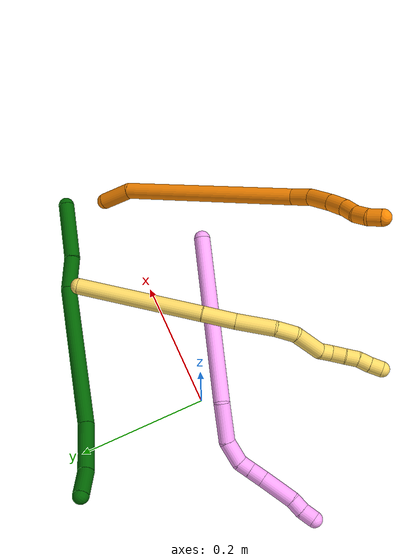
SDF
<sdf version="1.7">
 <world name="default">
  <model name="4">
   <static>0</static>
   <link name="4">
    <collision name="collision-cylinder-e_1_1_4">
     <pose>-0.044014 0.008316 0.122617 -0.067715 -0.3439 0.011764</pose>
     <geometry><cylinder><radius>0.0125</radius><length>0.261084</length></cylinder></geometry>
     <surface>
      <friction><ode><mu>1.16</mu><mu2>1.16</mu2><slip1>0</slip1><slip2>0</slip2></ode></friction>
      <contact><ode><kp>1e+06</kp><kd>1</kd><max_vel>0</max_vel><min_depth>0.001</min_depth></ode></contact>
     </surface>
    </collision>
    <visual name="visual-cylinder-e_1_1_4">
     <pose>-0.044014 0.008316 0.122617 -0.067715 -0.3439 0.011764</pose>
     <geometry><cylinder><radius>0.0125</radius><length>0.261084</length></cylinder></geometry>
     <material><ambient>1 0.65098 0.996078 1</ambient></material>
    </visual>
    <collision name="collision-cylinder-e_2_4_5">
     <pose>-0.104254 0.009661 0.270346 0.270762 -0.556886 -0.07784</pose>
     <geometry><cylinder><radius>0.0125</radius><length>0.061401</length></cylinder></geometry>
     <surface>
      <friction><ode><mu>1.16</mu><mu2>1.16</mu2><slip1>0</slip1><slip2>0</slip2></ode></friction>
      <contact><ode><kp>1e+06</kp><kd>1</kd><max_vel>0</max_vel><min_depth>0.001</min_depth></ode></contact>
     </surface>
    </collision>
    <visual name="visual-cylinder-e_2_4_5">
     <pose>-0.104254 0.009661 0.270346 0.270762 -0.556886 -0.07784</pose>
     <geometry><cylinder><radius>0.0125</radius><length>0.061401</length></cylinder></geometry>
     <material><ambient>1 0.65098 0.996078 1</ambient></material>
    </visual>
    <collision name="collision-cylinder-e_3_5_6">
     <pose>-0.123862 -0.005245 0.311891 0.449846 -0.183183 -0.042023</pose>
     <geometry><cylinder><radius>0.0125</radius><length>0.037118</length></cylinder></geometry>
     <surface>
      <friction><ode><mu>1.16</mu><mu2>1.16</mu2><slip1>0</slip1><slip2>0</slip2></ode></friction>
      <contact><ode><kp>1e+06</kp><kd>1</kd><max_vel>0</max_vel><min_depth>0.001</min_depth></ode></contact>
     </surface>
    </collision>
    <visual name="visual-cylinder-e_3_5_6">
     <pose>-0.123862 -0.005245 0.311891 0.449846 -0.183183 -0.042023</pose>
     <geometry><cylinder><radius>0.0125</radius><length>0.037118</length></cylinder></geometry>
     <material><ambient>1 0.65098 0.996078 1</ambient></material>
    </visual>
    <collision name="collision-cylinder-e_4_6_7">
     <pose>-0.124698 -0.018299 0.336538 0.557381 0.257016 0.073916</pose>
     <geometry><cylinder><radius>0.0125</radius><length>0.020015</length></cylinder></geometry>
     <surface>
      <friction><ode><mu>1.16</mu><mu2>1.16</mu2><slip1>0</slip1><slip2>0</slip2></ode></friction>
      <contact><ode><kp>1e+06</kp><kd>1</kd><max_vel>0</max_vel><min_depth>0.001</min_depth></ode></contact>
     </surface>
    </collision>
    <visual name="visual-cylinder-e_4_6_7">
     <pose>-0.124698 -0.018299 0.336538 0.557381 0.257016 0.073916</pose>
     <geometry><cylinder><radius>0.0125</radius><length>0.020015</length></cylinder></geometry>
     <material><ambient>1 0.65098 0.996078 1</ambient></material>
    </visual>
    <collision name="collision-cylinder-e_5_7_8">
     <pose>-0.118719 -0.028825 0.354571 0.503278 0.297415 0.076993</pose>
     <geometry><cylinder><radius>0.0125</radius><length>0.023448</length></cylinder></geometry>
     <surface>
      <friction><ode><mu>1.16</mu><mu2>1.16</mu2><slip1>0</slip1><slip2>0</slip2></ode></friction>
      <contact><ode><kp>1e+06</kp><kd>1</kd><max_vel>0</max_vel><min_depth>0.001</min_depth></ode></contact>
     </surface>
    </collision>
    <visual name="visual-cylinder-e_5_7_8">
     <pose>-0.118719 -0.028825 0.354571 0.503278 0.297415 0.076993</pose>
     <geometry><cylinder><radius>0.0125</radius><length>0.023448</length></cylinder></geometry>
     <material><ambient>1 0.65098 0.996078 1</ambient></material>
    </visual>
    <collision name="collision-cylinder-e_6_8_9">
     <pose>-0.107497 -0.046083 0.387243 0.47843 0.293715 0.072121</pose>
     <geometry><cylinder><radius>0.0125</radius><length>0.053789</length></cylinder></geometry>
     <surface>
      <friction><ode><mu>1.16</mu><mu2>1.16</mu2><slip1>0</slip1><slip2>0</slip2></ode></friction>
      <contact><ode><kp>1e+06</kp><kd>1</kd><max_vel>0</max_vel><min_depth>0.001</min_depth></ode></contact>
     </surface>
    </collision>
    <visual name="visual-cylinder-e_6_8_9">
     <pose>-0.107497 -0.046083 0.387243 0.47843 0.293715 0.072121</pose>
     <geometry><cylinder><radius>0.0125</radius><length>0.053789</length></cylinder></geometry>
     <material><ambient>1 0.65098 0.996078 1</ambient></material>
    </visual>
    <collision name="collision-cylinder-e_7_9_10">
     <pose>-0.09889 -0.062123 0.419871 0.404741 0.077 0.015806</pose>
     <geometry><cylinder><radius>0.0125</radius><length>0.021334</length></cylinder></geometry>
     <surface>
      <friction><ode><mu>1.16</mu><mu2>1.16</mu2><slip1>0</slip1><slip2>0</slip2></ode></friction>
      <contact><ode><kp>1e+06</kp><kd>1</kd><max_vel>0</max_vel><min_depth>0.001</min_depth></ode></contact>
     </surface>
    </collision>
    <visual name="visual-cylinder-e_7_9_10">
     <pose>-0.09889 -0.062123 0.419871 0.404741 0.077 0.015806</pose>
     <geometry><cylinder><radius>0.0125</radius><length>0.021334</length></cylinder></geometry>
     <material><ambient>1 0.65098 0.996078 1</ambient></material>
    </visual>
    <collision name="collision-cylinder-e_8_10_2">
     <pose>-0.094662 -0.070716 0.439023 0.439254 0.31782 0.071519</pose>
     <geometry><cylinder><radius>0.0125</radius><length>0.021811</length></cylinder></geometry>
     <surface>
      <friction><ode><mu>1.16</mu><mu2>1.16</mu2><slip1>0</slip1><slip2>0</slip2></ode></friction>
      <contact><ode><kp>1e+06</kp><kd>1</kd><max_vel>0</max_vel><min_depth>0.001</min_depth></ode></contact>
     </surface>
    </collision>
    <visual name="visual-cylinder-e_8_10_2">
     <pose>-0.094662 -0.070716 0.439023 0.439254 0.31782 0.071519</pose>
     <geometry><cylinder><radius>0.0125</radius><length>0.021811</length></cylinder></geometry>
     <material><ambient>1 0.65098 0.996078 1</ambient></material>
    </visual>
    <collision name="collision-sphere-2">
     <pose>-0.091254 -0.075122 0.448399 0 -0 0</pose>
     <geometry><sphere><radius>0.0125</radius></sphere></geometry>
     <surface>
      <friction><ode><mu>1.16</mu><mu2>1.16</mu2><slip1>0</slip1><slip2>0</slip2></ode></friction>
      <contact><ode><kp>1e+06</kp><kd>1</kd><max_vel>0</max_vel><min_depth>0.001</min_depth></ode></contact>
     </surface>
    </collision>
    <visual name="visual-sphere-2">
     <pose>-0.091254 -0.075122 0.448399 0 -0 0</pose>
     <geometry><sphere><radius>0.0125</radius></sphere></geometry>
     <material><ambient>1 0.65098 0.996078 1</ambient></material>
    </visual>
    <collision name="collision-sphere-10">
     <pose>-0.098069 -0.066311 0.429647 0 -0 0</pose>
     <geometry><sphere><radius>0.0125</radius></sphere></geometry>
     <surface>
      <friction><ode><mu>1.16</mu><mu2>1.16</mu2><slip1>0</slip1><slip2>0</slip2></ode></friction>
      <contact><ode><kp>1e+06</kp><kd>1</kd><max_vel>0</max_vel><min_depth>0.001</min_depth></ode></contact>
     </surface>
    </collision>
    <visual name="visual-sphere-10">
     <pose>-0.098069 -0.066311 0.429647 0 -0 0</pose>
     <geometry><sphere><radius>0.0125</radius></sphere></geometry>
     <material><ambient>1 0.65098 0.996078 1</ambient></material>
    </visual>
    <collision name="collision-sphere-9">
     <pose>-0.099711 -0.057935 0.410095 0 -0 0</pose>
     <geometry><sphere><radius>0.0125</radius></sphere></geometry>
     <surface>
      <friction><ode><mu>1.16</mu><mu2>1.16</mu2><slip1>0</slip1><slip2>0</slip2></ode></friction>
      <contact><ode><kp>1e+06</kp><kd>1</kd><max_vel>0</max_vel><min_depth>0.001</min_depth></ode></contact>
     </surface>
    </collision>
    <visual name="visual-sphere-9">
     <pose>-0.099711 -0.057935 0.410095 0 -0 0</pose>
     <geometry><sphere><radius>0.0125</radius></sphere></geometry>
     <material><ambient>1 0.65098 0.996078 1</ambient></material>
    </visual>
    <collision name="collision-sphere-4">
     <pose>-0.088027 0.016631 0.245233 0 -0 0</pose>
     <geometry><sphere><radius>0.0125</radius></sphere></geometry>
     <surface>
      <friction><ode><mu>1.16</mu><mu2>1.16</mu2><slip1>0</slip1><slip2>0</slip2></ode></friction>
      <contact><ode><kp>1e+06</kp><kd>1</kd><max_vel>0</max_vel><min_depth>0.001</min_depth></ode></contact>
     </surface>
    </collision>
    <visual name="visual-sphere-4">
     <pose>-0.088027 0.016631 0.245233 0 -0 0</pose>
     <geometry><sphere><radius>0.0125</radius></sphere></geometry>
     <material><ambient>1 0.65098 0.996078 1</ambient></material>
    </visual>
    <collision name="collision-sphere-1">
     <geometry><sphere><radius>0.0125</radius></sphere></geometry>
     <surface>
      <friction><ode><mu>1.16</mu><mu2>1.16</mu2><slip1>0</slip1><slip2>0</slip2></ode></friction>
      <contact><ode><kp>1e+06</kp><kd>1</kd><max_vel>0</max_vel><min_depth>0.001</min_depth></ode></contact>
     </surface>
    </collision>
    <visual name="visual-sphere-1">
     <geometry><sphere><radius>0.0125</radius></sphere></geometry>
     <material><ambient>1 0.65098 0.996078 1</ambient></material>
    </visual>
    <collision name="collision-sphere-8">
     <pose>-0.115283 -0.034231 0.36439 0 -0 0</pose>
     <geometry><sphere><radius>0.0125</radius></sphere></geometry>
     <surface>
      <friction><ode><mu>1.16</mu><mu2>1.16</mu2><slip1>0</slip1><slip2>0</slip2></ode></friction>
      <contact><ode><kp>1e+06</kp><kd>1</kd><max_vel>0</max_vel><min_depth>0.001</min_depth></ode></contact>
     </surface>
    </collision>
    <visual name="visual-sphere-8">
     <pose>-0.115283 -0.034231 0.36439 0 -0 0</pose>
     <geometry><sphere><radius>0.0125</radius></sphere></geometry>
     <material><ambient>1 0.65098 0.996078 1</ambient></material>
    </visual>
    <collision name="collision-sphere-5">
     <pose>-0.120481 0.00269 0.295458 0 -0 0</pose>
     <geometry><sphere><radius>0.0125</radius></sphere></geometry>
     <surface>
      <friction><ode><mu>1.16</mu><mu2>1.16</mu2><slip1>0</slip1><slip2>0</slip2></ode></friction>
      <contact><ode><kp>1e+06</kp><kd>1</kd><max_vel>0</max_vel><min_depth>0.001</min_depth></ode></contact>
     </surface>
    </collision>
    <visual name="visual-sphere-5">
     <pose>-0.120481 0.00269 0.295458 0 -0 0</pose>
     <geometry><sphere><radius>0.0125</radius></sphere></geometry>
     <material><ambient>1 0.65098 0.996078 1</ambient></material>
    </visual>
    <collision name="collision-sphere-6">
     <pose>-0.127242 -0.01318 0.328324 0 -0 0</pose>
     <geometry><sphere><radius>0.0125</radius></sphere></geometry>
     <surface>
      <friction><ode><mu>1.16</mu><mu2>1.16</mu2><slip1>0</slip1><slip2>0</slip2></ode></friction>
      <contact><ode><kp>1e+06</kp><kd>1</kd><max_vel>0</max_vel><min_depth>0.001</min_depth></ode></contact>
     </surface>
    </collision>
    <visual name="visual-sphere-6">
     <pose>-0.127242 -0.01318 0.328324 0 -0 0</pose>
     <geometry><sphere><radius>0.0125</radius></sphere></geometry>
     <material><ambient>1 0.65098 0.996078 1</ambient></material>
    </visual>
    <collision name="collision-sphere-7">
     <pose>-0.122154 -0.023419 0.344752 0 -0 0</pose>
     <geometry><sphere><radius>0.0125</radius></sphere></geometry>
     <surface>
      <friction><ode><mu>1.16</mu><mu2>1.16</mu2><slip1>0</slip1><slip2>0</slip2></ode></friction>
      <contact><ode><kp>1e+06</kp><kd>1</kd><max_vel>0</max_vel><min_depth>0.001</min_depth></ode></contact>
     </surface>
    </collision>
    <visual name="visual-sphere-7">
     <pose>-0.122154 -0.023419 0.344752 0 -0 0</pose>
     <geometry><sphere><radius>0.0125</radius></sphere></geometry>
     <material><ambient>1 0.65098 0.996078 1</ambient></material>
    </visual>
    <inertial>
     <pose>-0.075452 -0.007638 0.229204 0 -0 0</pose>
     <mass>0.5</mass>
     <inertia>
      <ixx>0.00146</ixx>
      <ixy>0</ixy>
      <ixz>0</ixz>
      <iyy>0.001546</iyy>
      <iyz>0</iyz>
      <izz>0.000467</izz>
     </inertia>
    </inertial>
   </link>
   <pose>0.223924 -0.102805 0.063074 1.37657 -0.723898 -1.45489</pose>
  </model>
  <model name="5">
   <static>0</static>
   <link name="5">
    <collision name="collision-cylinder-e_1_1_4">
     <pose>0.003073 -0.052594 0.083384 0.562724 0.031166 0.009008</pose>
     <geometry><cylinder><radius>0.0125</radius><length>0.197265</length></cylinder></geometry>
     <surface>
      <friction><ode><mu>1.16</mu><mu2>1.16</mu2><slip1>0</slip1><slip2>0</slip2></ode></friction>
      <contact><ode><kp>1e+06</kp><kd>1</kd><max_vel>0</max_vel><min_depth>0.001</min_depth></ode></contact>
     </surface>
    </collision>
    <visual name="visual-cylinder-e_1_1_4">
     <pose>0.003073 -0.052594 0.083384 0.562724 0.031166 0.009008</pose>
     <geometry><cylinder><radius>0.0125</radius><length>0.197265</length></cylinder></geometry>
     <material><ambient>1 0.858824 0.4 1</ambient></material>
    </visual>
    <collision name="collision-cylinder-e_2_4_5">
     <pose>0.005827 -0.121166 0.186929 0.670117 -0.012417 -0.004323</pose>
     <geometry><cylinder><radius>0.0125</radius><length>0.051455</length></cylinder></geometry>
     <surface>
      <friction><ode><mu>1.16</mu><mu2>1.16</mu2><slip1>0</slip1><slip2>0</slip2></ode></friction>
      <contact><ode><kp>1e+06</kp><kd>1</kd><max_vel>0</max_vel><min_depth>0.001</min_depth></ode></contact>
     </surface>
    </collision>
    <visual name="visual-cylinder-e_2_4_5">
     <pose>0.005827 -0.121166 0.186929 0.670117 -0.012417 -0.004323</pose>
     <geometry><cylinder><radius>0.0125</radius><length>0.051455</length></cylinder></geometry>
     <material><ambient>1 0.858824 0.4 1</ambient></material>
    </visual>
    <collision name="collision-cylinder-e_3_5_6">
     <pose>0.006593 -0.156041 0.231084 0.667165 0.035501 0.012303</pose>
     <geometry><cylinder><radius>0.0125</radius><length>0.061121</length></cylinder></geometry>
     <surface>
      <friction><ode><mu>1.16</mu><mu2>1.16</mu2><slip1>0</slip1><slip2>0</slip2></ode></friction>
      <contact><ode><kp>1e+06</kp><kd>1</kd><max_vel>0</max_vel><min_depth>0.001</min_depth></ode></contact>
     </surface>
    </collision>
    <visual name="visual-cylinder-e_3_5_6">
     <pose>0.006593 -0.156041 0.231084 0.667165 0.035501 0.012303</pose>
     <geometry><cylinder><radius>0.0125</radius><length>0.061121</length></cylinder></geometry>
     <material><ambient>1 0.858824 0.4 1</ambient></material>
    </visual>
    <collision name="collision-cylinder-e_4_6_7">
     <pose>0.005364 -0.187428 0.266003 0.852029 -0.13851 -0.062936</pose>
     <geometry><cylinder><radius>0.0125</radius><length>0.033509</length></cylinder></geometry>
     <surface>
      <friction><ode><mu>1.16</mu><mu2>1.16</mu2><slip1>0</slip1><slip2>0</slip2></ode></friction>
      <contact><ode><kp>1e+06</kp><kd>1</kd><max_vel>0</max_vel><min_depth>0.001</min_depth></ode></contact>
     </surface>
    </collision>
    <visual name="visual-cylinder-e_4_6_7">
     <pose>0.005364 -0.187428 0.266003 0.852029 -0.13851 -0.062936</pose>
     <geometry><cylinder><radius>0.0125</radius><length>0.033509</length></cylinder></geometry>
     <material><ambient>1 0.858824 0.4 1</ambient></material>
    </visual>
    <collision name="collision-cylinder-e_5_7_8">
     <pose>-0.009492 -0.22024 0.288055 1.06993 -0.496177 -0.297997</pose>
     <geometry><cylinder><radius>0.0125</radius><length>0.052693</length></cylinder></geometry>
     <surface>
      <friction><ode><mu>1.16</mu><mu2>1.16</mu2><slip1>0</slip1><slip2>0</slip2></ode></friction>
      <contact><ode><kp>1e+06</kp><kd>1</kd><max_vel>0</max_vel><min_depth>0.001</min_depth></ode></contact>
     </surface>
    </collision>
    <visual name="visual-cylinder-e_5_7_8">
     <pose>-0.009492 -0.22024 0.288055 1.06993 -0.496177 -0.297997</pose>
     <geometry><cylinder><radius>0.0125</radius><length>0.052693</length></cylinder></geometry>
     <material><ambient>1 0.858824 0.4 1</ambient></material>
    </visual>
    <collision name="collision-cylinder-e_6_8_9">
     <pose>-0.02328 -0.249475 0.304223 1.05587 -0.121017 -0.070628</pose>
     <geometry><cylinder><radius>0.0125</radius><length>0.020629</length></cylinder></geometry>
     <surface>
      <friction><ode><mu>1.16</mu><mu2>1.16</mu2><slip1>0</slip1><slip2>0</slip2></ode></friction>
      <contact><ode><kp>1e+06</kp><kd>1</kd><max_vel>0</max_vel><min_depth>0.001</min_depth></ode></contact>
     </surface>
    </collision>
    <visual name="visual-cylinder-e_6_8_9">
     <pose>-0.02328 -0.249475 0.304223 1.05587 -0.121017 -0.070628</pose>
     <geometry><cylinder><radius>0.0125</radius><length>0.020629</length></cylinder></geometry>
     <material><ambient>1 0.858824 0.4 1</ambient></material>
    </visual>
    <collision name="collision-cylinder-e_7_9_10">
     <pose>-0.024342 -0.264714 0.318715 0.590138 0.016073 0.004885</pose>
     <geometry><cylinder><radius>0.0125</radius><length>0.022748</length></cylinder></geometry>
     <surface>
      <friction><ode><mu>1.16</mu><mu2>1.16</mu2><slip1>0</slip1><slip2>0</slip2></ode></friction>
      <contact><ode><kp>1e+06</kp><kd>1</kd><max_vel>0</max_vel><min_depth>0.001</min_depth></ode></contact>
     </surface>
    </collision>
    <visual name="visual-cylinder-e_7_9_10">
     <pose>-0.024342 -0.264714 0.318715 0.590138 0.016073 0.004885</pose>
     <geometry><cylinder><radius>0.0125</radius><length>0.022748</length></cylinder></geometry>
     <material><ambient>1 0.858824 0.4 1</ambient></material>
    </visual>
    <collision name="collision-cylinder-e_8_10_11">
     <pose>-0.024336 -0.277813 0.335769 0.727332 -0.017383 -0.006616</pose>
     <geometry><cylinder><radius>0.0125</radius><length>0.020367</length></cylinder></geometry>
     <surface>
      <friction><ode><mu>1.16</mu><mu2>1.16</mu2><slip1>0</slip1><slip2>0</slip2></ode></friction>
      <contact><ode><kp>1e+06</kp><kd>1</kd><max_vel>0</max_vel><min_depth>0.001</min_depth></ode></contact>
     </surface>
    </collision>
    <visual name="visual-cylinder-e_8_10_11">
     <pose>-0.024336 -0.277813 0.335769 0.727332 -0.017383 -0.006616</pose>
     <geometry><cylinder><radius>0.0125</radius><length>0.020367</length></cylinder></geometry>
     <material><ambient>1 0.858824 0.4 1</ambient></material>
    </visual>
    <collision name="collision-cylinder-e_9_11_12">
     <pose>-0.026926 -0.290438 0.351139 0.646127 -0.243159 -0.081766</pose>
     <geometry><cylinder><radius>0.0125</radius><length>0.02004</length></cylinder></geometry>
     <surface>
      <friction><ode><mu>1.16</mu><mu2>1.16</mu2><slip1>0</slip1><slip2>0</slip2></ode></friction>
      <contact><ode><kp>1e+06</kp><kd>1</kd><max_vel>0</max_vel><min_depth>0.001</min_depth></ode></contact>
     </surface>
    </collision>
    <visual name="visual-cylinder-e_9_11_12">
     <pose>-0.026926 -0.290438 0.351139 0.646127 -0.243159 -0.081766</pose>
     <geometry><cylinder><radius>0.0125</radius><length>0.02004</length></cylinder></geometry>
     <material><ambient>1 0.858824 0.4 1</ambient></material>
    </visual>
    <collision name="collision-cylinder-e_10_12_2">
     <pose>-0.030618 -0.301965 0.367147 0.602623 -0.127274 -0.039602</pose>
     <geometry><cylinder><radius>0.0125</radius><length>0.020173</length></cylinder></geometry>
     <surface>
      <friction><ode><mu>1.16</mu><mu2>1.16</mu2><slip1>0</slip1><slip2>0</slip2></ode></friction>
      <contact><ode><kp>1e+06</kp><kd>1</kd><max_vel>0</max_vel><min_depth>0.001</min_depth></ode></contact>
     </surface>
    </collision>
    <visual name="visual-cylinder-e_10_12_2">
     <pose>-0.030618 -0.301965 0.367147 0.602623 -0.127274 -0.039602</pose>
     <geometry><cylinder><radius>0.0125</radius><length>0.020173</length></cylinder></geometry>
     <material><ambient>1 0.858824 0.4 1</ambient></material>
    </visual>
    <collision name="collision-sphere-2">
     <pose>-0.031899 -0.307635 0.375389 0 -0 0</pose>
     <geometry><sphere><radius>0.0125</radius></sphere></geometry>
     <surface>
      <friction><ode><mu>1.16</mu><mu2>1.16</mu2><slip1>0</slip1><slip2>0</slip2></ode></friction>
      <contact><ode><kp>1e+06</kp><kd>1</kd><max_vel>0</max_vel><min_depth>0.001</min_depth></ode></contact>
     </surface>
    </collision>
    <visual name="visual-sphere-2">
     <pose>-0.031899 -0.307635 0.375389 0 -0 0</pose>
     <geometry><sphere><radius>0.0125</radius></sphere></geometry>
     <material><ambient>1 0.858824 0.4 1</ambient></material>
    </visual>
    <collision name="collision-sphere-12">
     <pose>-0.029338 -0.296294 0.358904 0 -0 0</pose>
     <geometry><sphere><radius>0.0125</radius></sphere></geometry>
     <surface>
      <friction><ode><mu>1.16</mu><mu2>1.16</mu2><slip1>0</slip1><slip2>0</slip2></ode></friction>
      <contact><ode><kp>1e+06</kp><kd>1</kd><max_vel>0</max_vel><min_depth>0.001</min_depth></ode></contact>
     </surface>
    </collision>
    <visual name="visual-sphere-12">
     <pose>-0.029338 -0.296294 0.358904 0 -0 0</pose>
     <geometry><sphere><radius>0.0125</radius></sphere></geometry>
     <material><ambient>1 0.858824 0.4 1</ambient></material>
    </visual>
    <collision name="collision-sphere-11">
     <pose>-0.024513 -0.284583 0.343374 0 -0 0</pose>
     <geometry><sphere><radius>0.0125</radius></sphere></geometry>
     <surface>
      <friction><ode><mu>1.16</mu><mu2>1.16</mu2><slip1>0</slip1><slip2>0</slip2></ode></friction>
      <contact><ode><kp>1e+06</kp><kd>1</kd><max_vel>0</max_vel><min_depth>0.001</min_depth></ode></contact>
     </surface>
    </collision>
    <visual name="visual-sphere-11">
     <pose>-0.024513 -0.284583 0.343374 0 -0 0</pose>
     <geometry><sphere><radius>0.0125</radius></sphere></geometry>
     <material><ambient>1 0.858824 0.4 1</ambient></material>
    </visual>
    <collision name="collision-sphere-10">
     <pose>-0.024159 -0.271043 0.328164 0 -0 0</pose>
     <geometry><sphere><radius>0.0125</radius></sphere></geometry>
     <surface>
      <friction><ode><mu>1.16</mu><mu2>1.16</mu2><slip1>0</slip1><slip2>0</slip2></ode></friction>
      <contact><ode><kp>1e+06</kp><kd>1</kd><max_vel>0</max_vel><min_depth>0.001</min_depth></ode></contact>
     </surface>
    </collision>
    <visual name="visual-sphere-10">
     <pose>-0.024159 -0.271043 0.328164 0 -0 0</pose>
     <geometry><sphere><radius>0.0125</radius></sphere></geometry>
     <material><ambient>1 0.858824 0.4 1</ambient></material>
    </visual>
    <collision name="collision-sphere-9">
     <pose>-0.024525 -0.258386 0.309266 0 -0 0</pose>
     <geometry><sphere><radius>0.0125</radius></sphere></geometry>
     <surface>
      <friction><ode><mu>1.16</mu><mu2>1.16</mu2><slip1>0</slip1><slip2>0</slip2></ode></friction>
      <contact><ode><kp>1e+06</kp><kd>1</kd><max_vel>0</max_vel><min_depth>0.001</min_depth></ode></contact>
     </surface>
    </collision>
    <visual name="visual-sphere-9">
     <pose>-0.024525 -0.258386 0.309266 0 -0 0</pose>
     <geometry><sphere><radius>0.0125</radius></sphere></geometry>
     <material><ambient>1 0.858824 0.4 1</ambient></material>
    </visual>
    <collision name="collision-sphere-4">
     <pose>0.006147 -0.105188 0.166767 0 -0 0</pose>
     <geometry><sphere><radius>0.0125</radius></sphere></geometry>
     <surface>
      <friction><ode><mu>1.16</mu><mu2>1.16</mu2><slip1>0</slip1><slip2>0</slip2></ode></friction>
      <contact><ode><kp>1e+06</kp><kd>1</kd><max_vel>0</max_vel><min_depth>0.001</min_depth></ode></contact>
     </surface>
    </collision>
    <visual name="visual-sphere-4">
     <pose>0.006147 -0.105188 0.166767 0 -0 0</pose>
     <geometry><sphere><radius>0.0125</radius></sphere></geometry>
     <material><ambient>1 0.858824 0.4 1</ambient></material>
    </visual>
    <collision name="collision-sphere-1">
     <geometry><sphere><radius>0.0125</radius></sphere></geometry>
     <surface>
      <friction><ode><mu>1.16</mu><mu2>1.16</mu2><slip1>0</slip1><slip2>0</slip2></ode></friction>
      <contact><ode><kp>1e+06</kp><kd>1</kd><max_vel>0</max_vel><min_depth>0.001</min_depth></ode></contact>
     </surface>
    </collision>
    <visual name="visual-sphere-1">
     <geometry><sphere><radius>0.0125</radius></sphere></geometry>
     <material><ambient>1 0.858824 0.4 1</ambient></material>
    </visual>
    <collision name="collision-sphere-8">
     <pose>-0.022034 -0.240564 0.299181 0 -0 0</pose>
     <geometry><sphere><radius>0.0125</radius></sphere></geometry>
     <surface>
      <friction><ode><mu>1.16</mu><mu2>1.16</mu2><slip1>0</slip1><slip2>0</slip2></ode></friction>
      <contact><ode><kp>1e+06</kp><kd>1</kd><max_vel>0</max_vel><min_depth>0.001</min_depth></ode></contact>
     </surface>
    </collision>
    <visual name="visual-sphere-8">
     <pose>-0.022034 -0.240564 0.299181 0 -0 0</pose>
     <geometry><sphere><radius>0.0125</radius></sphere></geometry>
     <material><ambient>1 0.858824 0.4 1</ambient></material>
    </visual>
    <collision name="collision-sphere-5">
     <pose>0.005508 -0.137143 0.207091 0 -0 0</pose>
     <geometry><sphere><radius>0.0125</radius></sphere></geometry>
     <surface>
      <friction><ode><mu>1.16</mu><mu2>1.16</mu2><slip1>0</slip1><slip2>0</slip2></ode></friction>
      <contact><ode><kp>1e+06</kp><kd>1</kd><max_vel>0</max_vel><min_depth>0.001</min_depth></ode></contact>
     </surface>
    </collision>
    <visual name="visual-sphere-5">
     <pose>0.005508 -0.137143 0.207091 0 -0 0</pose>
     <geometry><sphere><radius>0.0125</radius></sphere></geometry>
     <material><ambient>1 0.858824 0.4 1</ambient></material>
    </visual>
    <collision name="collision-sphere-6">
     <pose>0.007677 -0.174939 0.255077 0 -0 0</pose>
     <geometry><sphere><radius>0.0125</radius></sphere></geometry>
     <surface>
      <friction><ode><mu>1.16</mu><mu2>1.16</mu2><slip1>0</slip1><slip2>0</slip2></ode></friction>
      <contact><ode><kp>1e+06</kp><kd>1</kd><max_vel>0</max_vel><min_depth>0.001</min_depth></ode></contact>
     </surface>
    </collision>
    <visual name="visual-sphere-6">
     <pose>0.007677 -0.174939 0.255077 0 -0 0</pose>
     <geometry><sphere><radius>0.0125</radius></sphere></geometry>
     <material><ambient>1 0.858824 0.4 1</ambient></material>
    </visual>
    <collision name="collision-sphere-7">
     <pose>0.003051 -0.199917 0.27693 0 -0 0</pose>
     <geometry><sphere><radius>0.0125</radius></sphere></geometry>
     <surface>
      <friction><ode><mu>1.16</mu><mu2>1.16</mu2><slip1>0</slip1><slip2>0</slip2></ode></friction>
      <contact><ode><kp>1e+06</kp><kd>1</kd><max_vel>0</max_vel><min_depth>0.001</min_depth></ode></contact>
     </surface>
    </collision>
    <visual name="visual-sphere-7">
     <pose>0.003051 -0.199917 0.27693 0 -0 0</pose>
     <geometry><sphere><radius>0.0125</radius></sphere></geometry>
     <material><ambient>1 0.858824 0.4 1</ambient></material>
    </visual>
    <inertial>
     <pose>-0.003396 -0.145542 0.198182 0 -0 0</pose>
     <mass>0.5</mass>
     <inertia>
      <ixx>0.000705</ixx>
      <ixy>0</ixy>
      <ixz>0</ixz>
      <iyy>0.00057</iyy>
      <iyz>0</iyz>
      <izz>0.000403</izz>
     </inertia>
    </inertial>
   </link>
   <pose>0.229093 0.103865 0.06984 0.951855 -0.631238 -0.664438</pose>
  </model>
  <model name="6">
   <static>0</static>
   <link name="6">
    <collision name="collision-cylinder-e_1_1_4">
     <pose>-0.038116 0.017169 -0.020961 -2.45531 -0.952834 1.9305</pose>
     <geometry><cylinder><radius>0.0125</radius><length>0.09353</length></cylinder></geometry>
     <surface>
      <friction><ode><mu>1.16</mu><mu2>1.16</mu2><slip1>0</slip1><slip2>0</slip2></ode></friction>
      <contact><ode><kp>1e+06</kp><kd>1</kd><max_vel>0</max_vel><min_depth>0.001</min_depth></ode></contact>
     </surface>
    </collision>
    <visual name="visual-cylinder-e_1_1_4">
     <pose>-0.038116 0.017169 -0.020961 -2.45531 -0.952834 1.9305</pose>
     <geometry><cylinder><radius>0.0125</radius><length>0.09353</length></cylinder></geometry>
     <material><ambient>0 0.392157 0.003922 1</ambient></material>
    </visual>
    <collision name="collision-cylinder-e_2_4_5">
     <pose>-0.096791 0.048524 -0.050687 -2.12428 -0.889309 1.41423</pose>
     <geometry><cylinder><radius>0.0125</radius><length>0.052943</length></cylinder></geometry>
     <surface>
      <friction><ode><mu>1.16</mu><mu2>1.16</mu2><slip1>0</slip1><slip2>0</slip2></ode></friction>
      <contact><ode><kp>1e+06</kp><kd>1</kd><max_vel>0</max_vel><min_depth>0.001</min_depth></ode></contact>
     </surface>
    </collision>
    <visual name="visual-cylinder-e_2_4_5">
     <pose>-0.096791 0.048524 -0.050687 -2.12428 -0.889309 1.41423</pose>
     <geometry><cylinder><radius>0.0125</radius><length>0.052943</length></cylinder></geometry>
     <material><ambient>0 0.392157 0.003922 1</ambient></material>
    </visual>
    <collision name="collision-cylinder-e_3_5_6">
     <pose>-0.220471 0.094006 -0.102661 -2.51474 -1.09334 2.16281</pose>
     <geometry><cylinder><radius>0.0125</radius><length>0.23221</length></cylinder></geometry>
     <surface>
      <friction><ode><mu>1.16</mu><mu2>1.16</mu2><slip1>0</slip1><slip2>0</slip2></ode></friction>
      <contact><ode><kp>1e+06</kp><kd>1</kd><max_vel>0</max_vel><min_depth>0.001</min_depth></ode></contact>
     </surface>
    </collision>
    <visual name="visual-cylinder-e_3_5_6">
     <pose>-0.220471 0.094006 -0.102661 -2.51474 -1.09334 2.16281</pose>
     <geometry><cylinder><radius>0.0125</radius><length>0.23221</length></cylinder></geometry>
     <material><ambient>0 0.392157 0.003922 1</ambient></material>
    </visual>
    <collision name="collision-cylinder-e_4_6_7">
     <pose>-0.360352 0.135108 -0.153181 -2.21148 -1.24959 1.92584</pose>
     <geometry><cylinder><radius>0.0125</radius><length>0.077483</length></cylinder></geometry>
     <surface>
      <friction><ode><mu>1.16</mu><mu2>1.16</mu2><slip1>0</slip1><slip2>0</slip2></ode></friction>
      <contact><ode><kp>1e+06</kp><kd>1</kd><max_vel>0</max_vel><min_depth>0.001</min_depth></ode></contact>
     </surface>
    </collision>
    <visual name="visual-cylinder-e_4_6_7">
     <pose>-0.360352 0.135108 -0.153181 -2.21148 -1.24959 1.92584</pose>
     <geometry><cylinder><radius>0.0125</radius><length>0.077483</length></cylinder></geometry>
     <material><ambient>0 0.392157 0.003922 1</ambient></material>
    </visual>
    <collision name="collision-cylinder-e_5_7_2">
     <pose>-0.418476 0.149557 -0.158949 -1.24991 -1.34563 1.04345</pose>
     <geometry><cylinder><radius>0.0125</radius><length>0.043834</length></cylinder></geometry>
     <surface>
      <friction><ode><mu>1.16</mu><mu2>1.16</mu2><slip1>0</slip1><slip2>0</slip2></ode></friction>
      <contact><ode><kp>1e+06</kp><kd>1</kd><max_vel>0</max_vel><min_depth>0.001</min_depth></ode></contact>
     </surface>
    </collision>
    <visual name="visual-cylinder-e_5_7_2">
     <pose>-0.418476 0.149557 -0.158949 -1.24991 -1.34563 1.04345</pose>
     <geometry><cylinder><radius>0.0125</radius><length>0.043834</length></cylinder></geometry>
     <material><ambient>0 0.392157 0.003922 1</ambient></material>
    </visual>
    <collision name="collision-sphere-2">
     <pose>-0.439839 0.154201 -0.157406 0 -0 0</pose>
     <geometry><sphere><radius>0.0125</radius></sphere></geometry>
     <surface>
      <friction><ode><mu>1.16</mu><mu2>1.16</mu2><slip1>0</slip1><slip2>0</slip2></ode></friction>
      <contact><ode><kp>1e+06</kp><kd>1</kd><max_vel>0</max_vel><min_depth>0.001</min_depth></ode></contact>
     </surface>
    </collision>
    <visual name="visual-sphere-2">
     <pose>-0.439839 0.154201 -0.157406 0 -0 0</pose>
     <geometry><sphere><radius>0.0125</radius></sphere></geometry>
     <material><ambient>0 0.392157 0.003922 1</ambient></material>
    </visual>
    <collision name="collision-sphere-7">
     <pose>-0.397112 0.144914 -0.160492 0 -0 0</pose>
     <geometry><sphere><radius>0.0125</radius></sphere></geometry>
     <surface>
      <friction><ode><mu>1.16</mu><mu2>1.16</mu2><slip1>0</slip1><slip2>0</slip2></ode></friction>
      <contact><ode><kp>1e+06</kp><kd>1</kd><max_vel>0</max_vel><min_depth>0.001</min_depth></ode></contact>
     </surface>
    </collision>
    <visual name="visual-sphere-7">
     <pose>-0.397112 0.144914 -0.160492 0 -0 0</pose>
     <geometry><sphere><radius>0.0125</radius></sphere></geometry>
     <material><ambient>0 0.392157 0.003922 1</ambient></material>
    </visual>
    <collision name="collision-sphere-6">
     <pose>-0.323592 0.125303 -0.14587 0 -0 0</pose>
     <geometry><sphere><radius>0.0125</radius></sphere></geometry>
     <surface>
      <friction><ode><mu>1.16</mu><mu2>1.16</mu2><slip1>0</slip1><slip2>0</slip2></ode></friction>
      <contact><ode><kp>1e+06</kp><kd>1</kd><max_vel>0</max_vel><min_depth>0.001</min_depth></ode></contact>
     </surface>
    </collision>
    <visual name="visual-sphere-6">
     <pose>-0.323592 0.125303 -0.14587 0 -0 0</pose>
     <geometry><sphere><radius>0.0125</radius></sphere></geometry>
     <material><ambient>0 0.392157 0.003922 1</ambient></material>
    </visual>
    <collision name="collision-sphere-5">
     <pose>-0.11735 0.06271 -0.059452 0 -0 0</pose>
     <geometry><sphere><radius>0.0125</radius></sphere></geometry>
     <surface>
      <friction><ode><mu>1.16</mu><mu2>1.16</mu2><slip1>0</slip1><slip2>0</slip2></ode></friction>
      <contact><ode><kp>1e+06</kp><kd>1</kd><max_vel>0</max_vel><min_depth>0.001</min_depth></ode></contact>
     </surface>
    </collision>
    <visual name="visual-sphere-5">
     <pose>-0.11735 0.06271 -0.059452 0 -0 0</pose>
     <geometry><sphere><radius>0.0125</radius></sphere></geometry>
     <material><ambient>0 0.392157 0.003922 1</ambient></material>
    </visual>
    <collision name="collision-sphere-1">
     <geometry><sphere><radius>0.0125</radius></sphere></geometry>
     <surface>
      <friction><ode><mu>1.16</mu><mu2>1.16</mu2><slip1>0</slip1><slip2>0</slip2></ode></friction>
      <contact><ode><kp>1e+06</kp><kd>1</kd><max_vel>0</max_vel><min_depth>0.001</min_depth></ode></contact>
     </surface>
    </collision>
    <visual name="visual-sphere-1">
     <geometry><sphere><radius>0.0125</radius></sphere></geometry>
     <material><ambient>0 0.392157 0.003922 1</ambient></material>
    </visual>
    <collision name="collision-sphere-4">
     <pose>-0.076233 0.034338 -0.041921 0 -0 0</pose>
     <geometry><sphere><radius>0.0125</radius></sphere></geometry>
     <surface>
      <friction><ode><mu>1.16</mu><mu2>1.16</mu2><slip1>0</slip1><slip2>0</slip2></ode></friction>
      <contact><ode><kp>1e+06</kp><kd>1</kd><max_vel>0</max_vel><min_depth>0.001</min_depth></ode></contact>
     </surface>
    </collision>
    <visual name="visual-sphere-4">
     <pose>-0.076233 0.034338 -0.041921 0 -0 0</pose>
     <geometry><sphere><radius>0.0125</radius></sphere></geometry>
     <material><ambient>0 0.392157 0.003922 1</ambient></material>
    </visual>
    <inertial>
     <pose>-0.212299 0.086056 -0.094639 0 -0 0</pose>
     <mass>0.5</mass>
     <inertia>
      <ixx>0.000142</ixx>
      <ixy>0</ixy>
      <ixz>0</ixz>
      <iyy>0.001515</iyy>
      <iyz>0</iyz>
      <izz>0.00071</izz>
     </inertia>
    </inertial>
   </link>
   <pose>0.387234 0.068661 0.011499 -0.657883 0.644154 -0.264355</pose>
  </model>
  <model name="19">
   <static>0</static>
   <link name="19">
    <collision name="collision-cylinder-e_1_1_4">
     <pose>-0.013337 -0.007009 0.02122 0.319037 -0.538074 -0.088661</pose>
     <geometry><cylinder><radius>0.0125</radius><length>0.05205</length></cylinder></geometry>
     <surface>
      <friction><ode><mu>1.16</mu><mu2>1.16</mu2><slip1>0</slip1><slip2>0</slip2></ode></friction>
      <contact><ode><kp>1e+06</kp><kd>1</kd><max_vel>0</max_vel><min_depth>0.001</min_depth></ode></contact>
     </surface>
    </collision>
    <visual name="visual-cylinder-e_1_1_4">
     <pose>-0.013337 -0.007009 0.02122 0.319037 -0.538074 -0.088661</pose>
     <geometry><cylinder><radius>0.0125</radius><length>0.05205</length></cylinder></geometry>
     <material><ambient>0.996078 0.537255 0 1</ambient></material>
    </visual>
    <collision name="collision-cylinder-e_2_4_5">
     <pose>-0.133713 -0.020092 0.133335 0.066719 -0.865676 -0.030837</pose>
     <geometry><cylinder><radius>0.0125</radius><length>0.281112</length></cylinder></geometry>
     <surface>
      <friction><ode><mu>1.16</mu><mu2>1.16</mu2><slip1>0</slip1><slip2>0</slip2></ode></friction>
      <contact><ode><kp>1e+06</kp><kd>1</kd><max_vel>0</max_vel><min_depth>0.001</min_depth></ode></contact>
     </surface>
    </collision>
    <visual name="visual-cylinder-e_2_4_5">
     <pose>-0.133713 -0.020092 0.133335 0.066719 -0.865676 -0.030837</pose>
     <geometry><cylinder><radius>0.0125</radius><length>0.281112</length></cylinder></geometry>
     <material><ambient>0.996078 0.537255 0 1</ambient></material>
    </visual>
    <collision name="collision-cylinder-e_3_5_6">
     <pose>-0.250681 -0.025196 0.236085 -0.081599 -0.6956 0.029597</pose>
     <geometry><cylinder><radius>0.0125</radius><length>0.030989</length></cylinder></geometry>
     <surface>
      <friction><ode><mu>1.16</mu><mu2>1.16</mu2><slip1>0</slip1><slip2>0</slip2></ode></friction>
      <contact><ode><kp>1e+06</kp><kd>1</kd><max_vel>0</max_vel><min_depth>0.001</min_depth></ode></contact>
     </surface>
    </collision>
    <visual name="visual-cylinder-e_3_5_6">
     <pose>-0.250681 -0.025196 0.236085 -0.081599 -0.6956 0.029597</pose>
     <geometry><cylinder><radius>0.0125</radius><length>0.030989</length></cylinder></geometry>
     <material><ambient>0.996078 0.537255 0 1</ambient></material>
    </visual>
    <collision name="collision-cylinder-e_4_6_7">
     <pose>-0.271946 -0.017688 0.263007 -0.409462 -0.60414 0.129224</pose>
     <geometry><cylinder><radius>0.0125</radius><length>0.039913</length></cylinder></geometry>
     <surface>
      <friction><ode><mu>1.16</mu><mu2>1.16</mu2><slip1>0</slip1><slip2>0</slip2></ode></friction>
      <contact><ode><kp>1e+06</kp><kd>1</kd><max_vel>0</max_vel><min_depth>0.001</min_depth></ode></contact>
     </surface>
    </collision>
    <visual name="visual-cylinder-e_4_6_7">
     <pose>-0.271946 -0.017688 0.263007 -0.409462 -0.60414 0.129224</pose>
     <geometry><cylinder><radius>0.0125</radius><length>0.039913</length></cylinder></geometry>
     <material><ambient>0.996078 0.537255 0 1</ambient></material>
    </visual>
    <collision name="collision-cylinder-e_5_7_8">
     <pose>-0.291445 -0.005471 0.288574 -0.495715 -0.599702 0.156161</pose>
     <geometry><cylinder><radius>0.0125</radius><length>0.028925</length></cylinder></geometry>
     <surface>
      <friction><ode><mu>1.16</mu><mu2>1.16</mu2><slip1>0</slip1><slip2>0</slip2></ode></friction>
      <contact><ode><kp>1e+06</kp><kd>1</kd><max_vel>0</max_vel><min_depth>0.001</min_depth></ode></contact>
     </surface>
    </collision>
    <visual name="visual-cylinder-e_5_7_8">
     <pose>-0.291445 -0.005471 0.288574 -0.495715 -0.599702 0.156161</pose>
     <geometry><cylinder><radius>0.0125</radius><length>0.028925</length></cylinder></geometry>
     <material><ambient>0.996078 0.537255 0 1</ambient></material>
    </visual>
    <collision name="collision-cylinder-e_6_8_9">
     <pose>-0.30567 0.006691 0.307415 -0.660814 -0.521066 0.182364</pose>
     <geometry><cylinder><radius>0.0125</radius><length>0.024357</length></cylinder></geometry>
     <surface>
      <friction><ode><mu>1.16</mu><mu2>1.16</mu2><slip1>0</slip1><slip2>0</slip2></ode></friction>
      <contact><ode><kp>1e+06</kp><kd>1</kd><max_vel>0</max_vel><min_depth>0.001</min_depth></ode></contact>
     </surface>
    </collision>
    <visual name="visual-cylinder-e_6_8_9">
     <pose>-0.30567 0.006691 0.307415 -0.660814 -0.521066 0.182364</pose>
     <geometry><cylinder><radius>0.0125</radius><length>0.024357</length></cylinder></geometry>
     <material><ambient>0.996078 0.537255 0 1</ambient></material>
    </visual>
    <collision name="collision-cylinder-e_7_9_10">
     <pose>-0.318596 0.016123 0.32382 -0.350535 -0.674214 0.123972</pose>
     <geometry><cylinder><radius>0.0125</radius><length>0.021988</length></cylinder></geometry>
     <surface>
      <friction><ode><mu>1.16</mu><mu2>1.16</mu2><slip1>0</slip1><slip2>0</slip2></ode></friction>
      <contact><ode><kp>1e+06</kp><kd>1</kd><max_vel>0</max_vel><min_depth>0.001</min_depth></ode></contact>
     </surface>
    </collision>
    <visual name="visual-cylinder-e_7_9_10">
     <pose>-0.318596 0.016123 0.32382 -0.350535 -0.674214 0.123972</pose>
     <geometry><cylinder><radius>0.0125</radius><length>0.021988</length></cylinder></geometry>
     <material><ambient>0.996078 0.537255 0 1</ambient></material>
    </visual>
    <collision name="collision-cylinder-e_8_10_2">
     <pose>-0.333226 0.01846 0.338675 0.08988 -0.850449 -0.040724</pose>
     <geometry><cylinder><radius>0.0125</radius><length>0.020666</length></cylinder></geometry>
     <surface>
      <friction><ode><mu>1.16</mu><mu2>1.16</mu2><slip1>0</slip1><slip2>0</slip2></ode></friction>
      <contact><ode><kp>1e+06</kp><kd>1</kd><max_vel>0</max_vel><min_depth>0.001</min_depth></ode></contact>
     </surface>
    </collision>
    <visual name="visual-cylinder-e_8_10_2">
     <pose>-0.333226 0.01846 0.338675 0.08988 -0.850449 -0.040724</pose>
     <geometry><cylinder><radius>0.0125</radius><length>0.020666</length></cylinder></geometry>
     <material><ambient>0.996078 0.537255 0 1</ambient></material>
    </visual>
    <collision name="collision-sphere-2">
     <pose>-0.340992 0.017849 0.345464 0 -0 0</pose>
     <geometry><sphere><radius>0.0125</radius></sphere></geometry>
     <surface>
      <friction><ode><mu>1.16</mu><mu2>1.16</mu2><slip1>0</slip1><slip2>0</slip2></ode></friction>
      <contact><ode><kp>1e+06</kp><kd>1</kd><max_vel>0</max_vel><min_depth>0.001</min_depth></ode></contact>
     </surface>
    </collision>
    <visual name="visual-sphere-2">
     <pose>-0.340992 0.017849 0.345464 0 -0 0</pose>
     <geometry><sphere><radius>0.0125</radius></sphere></geometry>
     <material><ambient>0.996078 0.537255 0 1</ambient></material>
    </visual>
    <collision name="collision-sphere-10">
     <pose>-0.32546 0.019072 0.331886 0 -0 0</pose>
     <geometry><sphere><radius>0.0125</radius></sphere></geometry>
     <surface>
      <friction><ode><mu>1.16</mu><mu2>1.16</mu2><slip1>0</slip1><slip2>0</slip2></ode></friction>
      <contact><ode><kp>1e+06</kp><kd>1</kd><max_vel>0</max_vel><min_depth>0.001</min_depth></ode></contact>
     </surface>
    </collision>
    <visual name="visual-sphere-10">
     <pose>-0.32546 0.019072 0.331886 0 -0 0</pose>
     <geometry><sphere><radius>0.0125</radius></sphere></geometry>
     <material><ambient>0.996078 0.537255 0 1</ambient></material>
    </visual>
    <collision name="collision-sphere-9">
     <pose>-0.311733 0.013173 0.315754 0 -0 0</pose>
     <geometry><sphere><radius>0.0125</radius></sphere></geometry>
     <surface>
      <friction><ode><mu>1.16</mu><mu2>1.16</mu2><slip1>0</slip1><slip2>0</slip2></ode></friction>
      <contact><ode><kp>1e+06</kp><kd>1</kd><max_vel>0</max_vel><min_depth>0.001</min_depth></ode></contact>
     </surface>
    </collision>
    <visual name="visual-sphere-9">
     <pose>-0.311733 0.013173 0.315754 0 -0 0</pose>
     <geometry><sphere><radius>0.0125</radius></sphere></geometry>
     <material><ambient>0.996078 0.537255 0 1</ambient></material>
    </visual>
    <collision name="collision-sphere-4">
     <pose>-0.026675 -0.014019 0.04244 0 -0 0</pose>
     <geometry><sphere><radius>0.0125</radius></sphere></geometry>
     <surface>
      <friction><ode><mu>1.16</mu><mu2>1.16</mu2><slip1>0</slip1><slip2>0</slip2></ode></friction>
      <contact><ode><kp>1e+06</kp><kd>1</kd><max_vel>0</max_vel><min_depth>0.001</min_depth></ode></contact>
     </surface>
    </collision>
    <visual name="visual-sphere-4">
     <pose>-0.026675 -0.014019 0.04244 0 -0 0</pose>
     <geometry><sphere><radius>0.0125</radius></sphere></geometry>
     <material><ambient>0.996078 0.537255 0 1</ambient></material>
    </visual>
    <collision name="collision-sphere-1">
     <geometry><sphere><radius>0.0125</radius></sphere></geometry>
     <surface>
      <friction><ode><mu>1.16</mu><mu2>1.16</mu2><slip1>0</slip1><slip2>0</slip2></ode></friction>
      <contact><ode><kp>1e+06</kp><kd>1</kd><max_vel>0</max_vel><min_depth>0.001</min_depth></ode></contact>
     </surface>
    </collision>
    <visual name="visual-sphere-1">
     <geometry><sphere><radius>0.0125</radius></sphere></geometry>
     <material><ambient>0.996078 0.537255 0 1</ambient></material>
    </visual>
    <collision name="collision-sphere-8">
     <pose>-0.299608 0.000208 0.299076 0 -0 0</pose>
     <geometry><sphere><radius>0.0125</radius></sphere></geometry>
     <surface>
      <friction><ode><mu>1.16</mu><mu2>1.16</mu2><slip1>0</slip1><slip2>0</slip2></ode></friction>
      <contact><ode><kp>1e+06</kp><kd>1</kd><max_vel>0</max_vel><min_depth>0.001</min_depth></ode></contact>
     </surface>
    </collision>
    <visual name="visual-sphere-8">
     <pose>-0.299608 0.000208 0.299076 0 -0 0</pose>
     <geometry><sphere><radius>0.0125</radius></sphere></geometry>
     <material><ambient>0.996078 0.537255 0 1</ambient></material>
    </visual>
    <collision name="collision-sphere-5">
     <pose>-0.240751 -0.026166 0.22423 0 -0 0</pose>
     <geometry><sphere><radius>0.0125</radius></sphere></geometry>
     <surface>
      <friction><ode><mu>1.16</mu><mu2>1.16</mu2><slip1>0</slip1><slip2>0</slip2></ode></friction>
      <contact><ode><kp>1e+06</kp><kd>1</kd><max_vel>0</max_vel><min_depth>0.001</min_depth></ode></contact>
     </surface>
    </collision>
    <visual name="visual-sphere-5">
     <pose>-0.240751 -0.026166 0.22423 0 -0 0</pose>
     <geometry><sphere><radius>0.0125</radius></sphere></geometry>
     <material><ambient>0.996078 0.537255 0 1</ambient></material>
    </visual>
    <collision name="collision-sphere-6">
     <pose>-0.26061 -0.024227 0.24794 0 -0 0</pose>
     <geometry><sphere><radius>0.0125</radius></sphere></geometry>
     <surface>
      <friction><ode><mu>1.16</mu><mu2>1.16</mu2><slip1>0</slip1><slip2>0</slip2></ode></friction>
      <contact><ode><kp>1e+06</kp><kd>1</kd><max_vel>0</max_vel><min_depth>0.001</min_depth></ode></contact>
     </surface>
    </collision>
    <visual name="visual-sphere-6">
     <pose>-0.26061 -0.024227 0.24794 0 -0 0</pose>
     <geometry><sphere><radius>0.0125</radius></sphere></geometry>
     <material><ambient>0.996078 0.537255 0 1</ambient></material>
    </visual>
    <collision name="collision-sphere-7">
     <pose>-0.283283 -0.011149 0.278073 0 -0 0</pose>
     <geometry><sphere><radius>0.0125</radius></sphere></geometry>
     <surface>
      <friction><ode><mu>1.16</mu><mu2>1.16</mu2><slip1>0</slip1><slip2>0</slip2></ode></friction>
      <contact><ode><kp>1e+06</kp><kd>1</kd><max_vel>0</max_vel><min_depth>0.001</min_depth></ode></contact>
     </surface>
    </collision>
    <visual name="visual-sphere-7">
     <pose>-0.283283 -0.011149 0.278073 0 -0 0</pose>
     <geometry><sphere><radius>0.0125</radius></sphere></geometry>
     <material><ambient>0.996078 0.537255 0 1</ambient></material>
    </visual>
    <inertial>
     <pose>-0.173344 -0.013518 0.172708 0 -0 0</pose>
     <mass>0.5</mass>
     <inertia>
      <ixx>0.00117</ixx>
      <ixy>0</ixy>
      <ixz>0</ixz>
      <iyy>0.001856</iyy>
      <iyz>0</iyz>
      <izz>0.001542</izz>
     </inertia>
    </inertial>
   </link>
   <pose>0.367945 0.00794 0.011695 0.181747 -0.303101 0.757011</pose>
  </model>
 </world>
</sdf>
